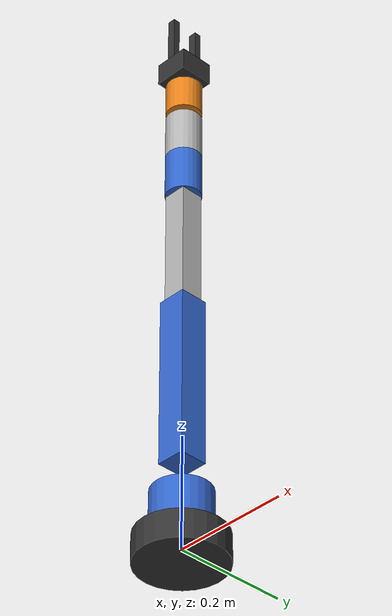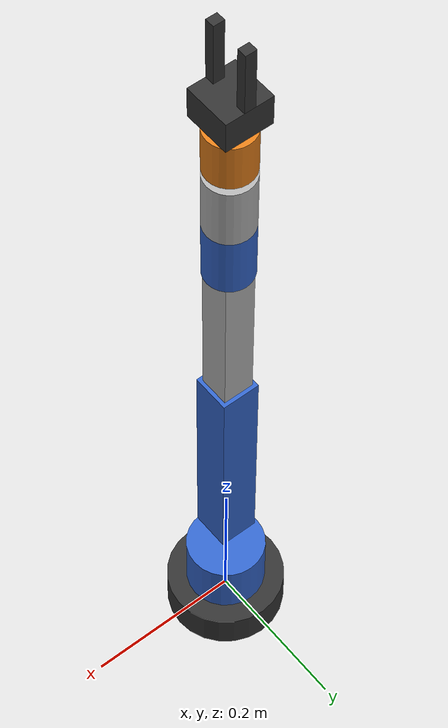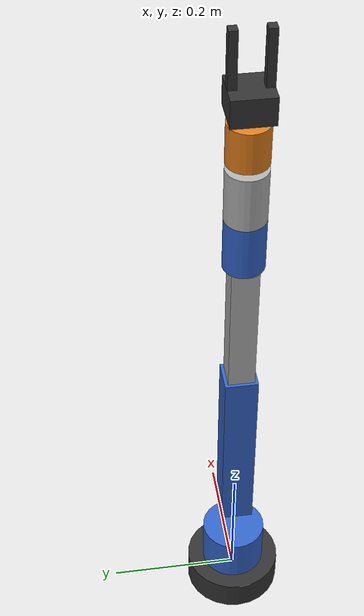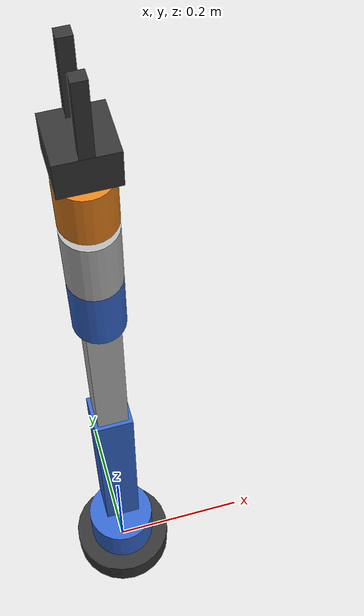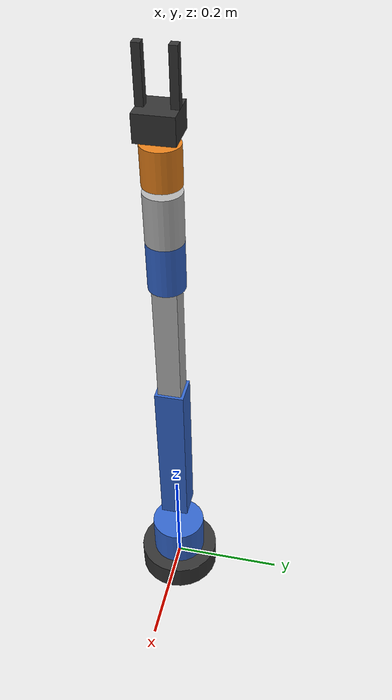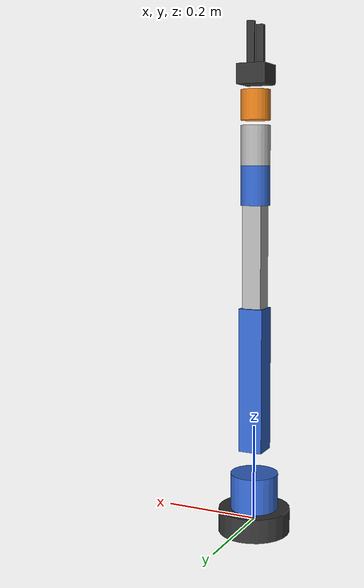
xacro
<?xml version="1.0"?>
<robot xmlns:xacro="http://www.ros.org/wiki/xacro" name="arm6dof">
    <xacro:arg name="initial_positions_file" default="initial_positions.yaml" />

    <!-- Import arm6dof urdf file -->
    <xacro:include filename="$(find robot_description)/urdf/robot.urdf.xacro" />

    <!-- Import control_xacro -->
    <xacro:include filename="arm6dof.ros2_control.xacro" />

    <xacro:arm6dof_ros2_control name="FakeSystem" initial_positions_file="$(arg initial_positions_file)"/>

</robot>

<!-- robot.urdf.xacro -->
<robot xmlns:xacro="http://www.ros.org/wiki/xacro" name="arm6dof">

  <!-- ── Materials ─────────────────────────────────────────────── -->
  <material name="dark_grey">  <color rgba="0.20 0.20 0.20 1"/> </material>
  <material name="blue">       <color rgba="0.20 0.40 0.80 1"/> </material>
  <material name="light_grey"> <color rgba="0.70 0.70 0.70 1"/> </material>
  <material name="orange">     <color rgba="0.90 0.50 0.10 1"/> </material>

  <!-- ── Inertia helpers ───────────────────────────────────────── -->
  <!-- solid cylinder, axis along Z -->
  <xacro:macro name="inertial_cyl" params="mass r h *origin">
    <inertial>
      <xacro:insert_block name="origin"/>
      <mass value="${mass}"/>
      <inertia ixx="${mass*(3*r*r+h*h)/12}" ixy="0" ixz="0"
               iyy="${mass*(3*r*r+h*h)/12}" iyz="0"
               izz="${mass*r*r/2}"/>
    </inertial>
  </xacro:macro>

  <!-- solid box -->
  <xacro:macro name="inertial_box" params="mass x y z *origin">
    <inertial>
      <xacro:insert_block name="origin"/>
      <mass value="${mass}"/>
      <inertia ixx="${mass*(y*y+z*z)/12}" ixy="0" ixz="0"
               iyy="${mass*(x*x+z*z)/12}" iyz="0"
               izz="${mass*(x*x+y*y)/12}"/>
    </inertial>
  </xacro:macro>

  <!--  LINKS                                                       -->

  <!-- virtual world anchor -->
  <link name="world"/>

  <!-- ── base_link: flat disc ──────────────────────────────────── -->
  <link name="base_link">
    <visual>
      <geometry><cylinder radius="0.075" length="0.05"/></geometry>
      <material name="dark_grey"/>
    </visual>
    <collision>
      <geometry><cylinder radius="0.075" length="0.05"/></geometry>
    </collision>
    <xacro:inertial_cyl mass="2.0" r="0.075" h="0.05">
      <origin xyz="0 0 0" rpy="0 0 0"/>
    </xacro:inertial_cyl>
  </link>

  <!-- ── link1: shoulder-pan hub ───────────────────────────────── -->
  <link name="link1">
    <visual>
      <geometry><cylinder radius="0.05" length="0.10"/></geometry>
      <material name="blue"/>
    </visual>
    <collision>
      <geometry><cylinder radius="0.05" length="0.10"/></geometry>
    </collision>
    <xacro:inertial_cyl mass="1.5" r="0.05" h="0.10">
      <origin xyz="0 0 0" rpy="0 0 0"/>
    </xacro:inertial_cyl>
  </link>

  <!-- ── link2: upper arm (box, CoM at mid-length) ─────────────── -->
  <link name="link2">
    <visual>
      <origin xyz="0 0 0.15"/>
      <geometry><box size="0.05 0.05 0.30"/></geometry>
      <material name="blue"/>
    </visual>
    <collision>
      <origin xyz="0 0 0.15"/>
      <geometry><box size="0.05 0.05 0.30"/></geometry>
    </collision>
    <xacro:inertial_box mass="1.2" x="0.05" y="0.05" z="0.30">
      <origin xyz="0 0 0.15" rpy="0 0 0"/>
    </xacro:inertial_box>
  </link>

  <!-- ── link3: forearm (box, CoM at mid-length) ───────────────── -->
  <link name="link3">
    <visual>
      <origin xyz="0 0 0.125"/>
      <geometry><box size="0.04 0.04 0.25"/></geometry>
      <material name="light_grey"/>
    </visual>
    <collision>
      <origin xyz="0 0 0.125"/>
      <geometry><box size="0.04 0.04 0.25"/></geometry>
    </collision>
    <xacro:inertial_box mass="0.9" x="0.04" y="0.04" z="0.25">
      <origin xyz="0 0 0.125" rpy="0 0 0"/>
    </xacro:inertial_box>
  </link>

  <!-- ── link4: wrist-1 roll ───────────────────────────────────── -->
  <link name="link4">
    <visual>
      <geometry><cylinder radius="0.03" length="0.08"/></geometry>
      <material name="blue"/>
    </visual>
    <collision>
      <geometry><cylinder radius="0.03" length="0.08"/></geometry>
    </collision>
    <xacro:inertial_cyl mass="0.5" r="0.03" h="0.08">
      <origin xyz="0 0 0" rpy="0 0 0"/>
    </xacro:inertial_cyl>
  </link>

  <!-- ── link5: wrist-2 pitch ──────────────────────────────────── -->
  <link name="link5">
    <visual>
      <geometry><cylinder radius="0.03" length="0.08"/></geometry>
      <material name="light_grey"/>
    </visual>
    <collision>
      <geometry><cylinder radius="0.03" length="0.08"/></geometry>
    </collision>
    <xacro:inertial_cyl mass="0.5" r="0.03" h="0.08">
      <origin xyz="0 0 0" rpy="0 0 0"/>
    </xacro:inertial_cyl>
  </link>

  <!-- ── link6: wrist-3 yaw / tool flange ─────────────────────── -->
  <link name="link6">
    <visual>
      <geometry><cylinder radius="0.03" length="0.06"/></geometry>
      <material name="orange"/>
    </visual>
    <collision>
      <geometry><cylinder radius="0.03" length="0.06"/></geometry>
    </collision>
    <xacro:inertial_cyl mass="0.3" r="0.03" h="0.06">
      <origin xyz="0 0 0" rpy="0 0 0"/>
    </xacro:inertial_cyl>
  </link>

  <!-- ── gripper_base: palm ─────────────────────────────────────── -->
  <link name="gripper_base">
    <visual>
      <geometry><box size="0.06 0.06 0.04"/></geometry>
      <material name="dark_grey"/>
    </visual>
    <collision>
      <geometry><box size="0.06 0.06 0.04"/></geometry>
    </collision>
    <xacro:inertial_box mass="0.20" x="0.06" y="0.06" z="0.04">
      <origin xyz="0 0 0" rpy="0 0 0"/>
    </xacro:inertial_box>
  </link>

  <!-- ── finger_left ───────────────────────────────────────────── -->
  <link name="finger_left">
    <visual>
      <origin xyz="0 0 0.04"/>
      <geometry><box size="0.014 0.012 0.08"/></geometry>
      <material name="dark_grey"/>
    </visual>
    <collision>
      <origin xyz="0 0 0.04"/>
      <geometry><box size="0.014 0.012 0.08"/></geometry>
    </collision>
    <xacro:inertial_box mass="0.05" x="0.014" y="0.012" z="0.08">
      <origin xyz="0 0 0.04" rpy="0 0 0"/>
    </xacro:inertial_box>
  </link>

  <!-- ── finger_right ──────────────────────────────────────────── -->
  <link name="finger_right">
    <visual>
      <origin xyz="0 0 0.04"/>
      <geometry><box size="0.014 0.012 0.08"/></geometry>
      <material name="dark_grey"/>
    </visual>
    <collision>
      <origin xyz="0 0 0.04"/>
      <geometry><box size="0.014 0.012 0.08"/></geometry>
    </collision>
    <xacro:inertial_box mass="0.05" x="0.014" y="0.012" z="0.08">
      <origin xyz="0 0 0.04" rpy="0 0 0"/>
    </xacro:inertial_box>
  </link>

  <!--  JOINTS                                                      -->

  <!-- world → base (fixed) -->
  <joint name="world_to_base" type="fixed">
    <parent link="world"/>
    <child  link="base_link"/>
    <origin xyz="0 0 0" rpy="0 0 0"/>
  </joint>

  <!-- J1: shoulder pan – revolute Z ±180 ° -->
  <joint name="joint1" type="revolute">
    <parent link="base_link"/>
    <child  link="link1"/>
    <origin xyz="0 0 0.05" rpy="0 0 0"/>
    <axis xyz="0 0 1"/>
    <limit lower="${-pi}"   upper="${pi}"   effort="150" velocity="${pi}"/>
    <dynamics damping="0.5" friction="0.1"/>
  </joint>

  <!-- J2: shoulder lift – revolute Y ±90 ° -->
  <joint name="joint2" type="revolute">
    <parent link="link1"/>
    <child  link="link2"/>
    <origin xyz="0 0 0.10" rpy="0 0 0"/>
    <axis xyz="0 1 0"/>
    <limit lower="${-pi/2}" upper="${pi/2}" effort="150" velocity="${pi}"/>
    <dynamics damping="0.5" friction="0.1"/>
  </joint>

  <!-- J3: elbow – revolute Y ±135 ° -->
  <joint name="joint3" type="revolute">
    <parent link="link2"/>
    <child  link="link3"/>
    <origin xyz="0 0 0.30" rpy="0 0 0"/>
    <axis xyz="0 1 0"/>
    <limit lower="${-3*pi/4}" upper="${3*pi/4}" effort="100" velocity="${pi}"/>
    <dynamics damping="0.5" friction="0.1"/>
  </joint>

  <!-- J4: wrist roll – revolute X ±180 ° -->
  <joint name="joint4" type="revolute">
    <parent link="link3"/>
    <child  link="link4"/>
    <origin xyz="0 0 0.25" rpy="0 0 0"/>
    <axis xyz="1 0 0"/>
    <limit lower="${-pi}"   upper="${pi}"   effort="50" velocity="${pi}"/>
    <dynamics damping="0.3" friction="0.05"/>
  </joint>

  <!-- J5: wrist pitch – revolute Y ±90 ° -->
  <joint name="joint5" type="revolute">
    <parent link="link4"/>
    <child  link="link5"/>
    <origin xyz="0 0 0.08" rpy="0 0 0"/>
    <axis xyz="0 1 0"/>
    <limit lower="${-pi/2}" upper="${pi/2}" effort="50" velocity="${pi}"/>
    <dynamics damping="0.3" friction="0.05"/>
  </joint>

  <!-- J6: wrist yaw – revolute Z ±180 ° -->
  <joint name="joint6" type="revolute">
    <parent link="link5"/>
    <child  link="link6"/>
    <origin xyz="0 0 0.08" rpy="0 0 0"/>
    <axis xyz="0 0 1"/>
    <limit lower="${-pi}"   upper="${pi}"   effort="30" velocity="${pi}"/>
    <dynamics damping="0.2" friction="0.05"/>
  </joint>

  <!-- link6 → gripper_base (fixed) -->
  <joint name="gripper_base_joint" type="fixed">
    <parent link="link6"/>
    <child  link="gripper_base"/>
    <origin xyz="0 0 0.06" rpy="0 0 0"/>
  </joint>

  <!-- left finger: slides in +Y -->
  <joint name="finger_left_joint" type="prismatic">
    <parent link="gripper_base"/>
    <child  link="finger_left"/>
    <origin xyz="0  0.024 0.02" rpy="0 0 0"/>
    <axis xyz="0 1 0"/>
    <limit lower="0.0" upper="0.03" effort="20" velocity="0.1"/>
    <dynamics damping="0.1" friction="0.05"/>
  </joint>

  <!-- right finger: slides in -Y, mimics left -->
  <joint name="finger_right_joint" type="prismatic">
    <parent link="gripper_base"/>
    <child  link="finger_right"/>
    <origin xyz="0 -0.024 0.02" rpy="0 0 0"/>
    <axis xyz="0 -1 0"/>
    <limit lower="0.0" upper="0.03" effort="20" velocity="0.1"/>
    <dynamics damping="0.1" friction="0.05"/>
    <mimic joint="finger_left_joint" multiplier="1" offset="0"/>
  </joint>

  <!--  ROS2 CONTROL                                                -->

  <ros2_control name="arm6dof_system" type="system">
    <hardware>
      <plugin>gz_ros2_control/GazeboSimSystem</plugin>
    </hardware>

    <joint name="joint1">
      <command_interface name="position">
        <param name="min">${-pi}</param>
        <param name="max">${pi}</param>
      </command_interface>
      <state_interface name="position"><param name="initial_value">0.0</param></state_interface>
      <state_interface name="velocity"/>
      <state_interface name="effort"/>
    </joint>

    <joint name="joint2">
      <command_interface name="position">
        <param name="min">${-pi/2}</param>
        <param name="max">${pi/2}</param>
      </command_interface>
      <state_interface name="position"><param name="initial_value">0.0</param></state_interface>
      <state_interface name="velocity"/>
      <state_interface name="effort"/>
    </joint>

    <joint name="joint3">
      <command_interface name="position">
        <param name="min">${-3*pi/4}</param>
        <param name="max">${3*pi/4}</param>
      </command_interface>
      <state_interface name="position"><param name="initial_value">0.0</param></state_interface>
      <state_interface name="velocity"/>
      <state_interface name="effort"/>
    </joint>

    <joint name="joint4">
      <command_interface name="position">
        <param name="min">${-pi}</param>
        <param name="max">${pi}</param>
      </command_interface>
      <state_interface name="position"><param name="initial_value">0.0</param></state_interface>
      <state_interface name="velocity"/>
      <state_interface name="effort"/>
    </joint>

    <joint name="joint5">
      <command_interface name="position">
        <param name="min">${-pi/2}</param>
        <param name="max">${pi/2}</param>
      </command_interface>
      <state_interface name="position"><param name="initial_value">0.0</param></state_interface>
      <state_interface name="velocity"/>
      <state_interface name="effort"/>
    </joint>

    <joint name="joint6">
      <command_interface name="position">
        <param name="min">${-pi}</param>
        <param name="max">${pi}</param>
      </command_interface>
      <state_interface name="position"><param name="initial_value">0.0</param></state_interface>
      <state_interface name="velocity"/>
      <state_interface name="effort"/>
    </joint>

    <!-- Active gripper finger -->
    <joint name="finger_left_joint">
      <command_interface name="position">
        <param name="min">0.0</param>
        <param name="max">0.03</param>
      </command_interface>
      <state_interface name="position"><param name="initial_value">0.0</param></state_interface>
      <state_interface name="velocity"/>
      <state_interface name="effort"/>
    </joint>

  </ros2_control>

  <!-- ── Gazebo plugin ─────────────────────────────────────────── -->
  <gazebo>
    <plugin filename="gz_ros2_control-system"
            name="gz_ros2_control::GazeboSimROS2ControlPlugin">
      <parameters>$(find robot_simulation)/config/ros2_controllers.yaml</parameters>
    </plugin>
  </gazebo>

</robot>
